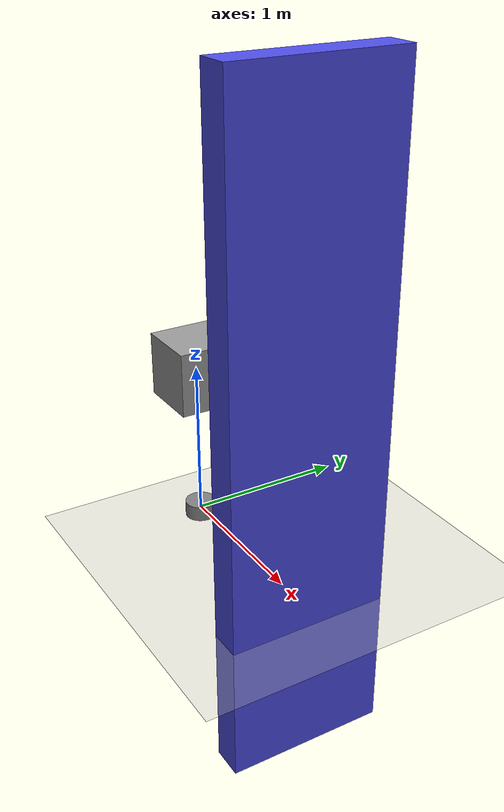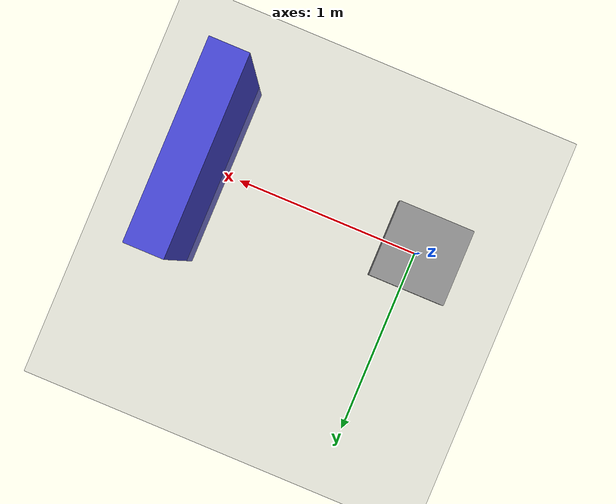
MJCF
<mujoco>
  <option gravity="0 0 -9.81"/>
  <worldbody>
    <body name="hinge" pos="0 0 0">
      <geom type="cylinder" size="0.1 0.05" rgba="0.5 0.5 0.5 1"/>
    </body>
    <body name="support" pos="0 0 1">
      <geom type="box" size="0.2 0.2 0.2" rgba="0.6 0.6 0.6 1"/>
    </body>
    <body name="surface" pos="-10 0 -0.1">
      <geom type="plane" size="30 30 0.1" rgba="0.7 0.7 0.7 1"/>
    </body>
    <body name="door" pos="1.2 0 1">
      <geom type="box" size="0.1 0.5 2" density="3" rgba="0.3 0.3 0.9 1"/>
      <joint name="door_joint" type="hinge" axis="0 0 1"/>
    </body>
  </worldbody>
</mujoco>
